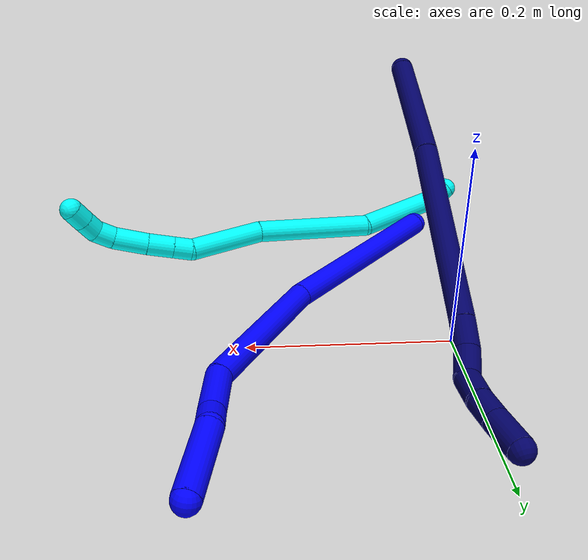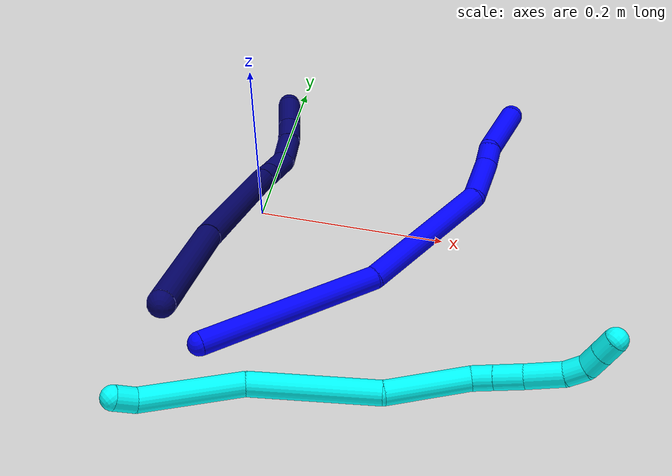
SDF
<sdf version="1.7">
 <world name="default">
  <model name="photoneo_s_sensor">
   <static>1</static>
   <pose>0 0 2 1.57079 1.57079 3.14159</pose>
   <link name="link">
    <inertial><mass>0.1</mass></inertial>
    <sensor name="sensor" type="depth">
     <update_rate>30</update_rate>
     <camera>
      <horizontal_fov>1.22</horizontal_fov>
      <image><width>1920</width><height>1200</height><format>B8G8R8</format></image>
      <clip><near>0.1</near><far>2</far></clip>
      <depth_camera><output>points</output></depth_camera>
     </camera>
     <plugin name="camera_plugin" filename="libgazebo_ros_depth_camera.so">
      <baseline>0.2</baseline>
      <alwaysOn>1</alwaysOn>
      <updateRate>0.0</updateRate>
      <cameraName>camera_ir</cameraName>
      <imageTopicName>/camera/color/image_raw</imageTopicName>
      <cameraInfoTopicName>/camera/color/camera_info</cameraInfoTopicName>
      <depthImageTopicName>/camera/depth/image_raw</depthImageTopicName>
      <depthImageCameraInfoTopicName>/camera/depth/camera_info</depthImageCameraInfoTopicName>
      <pointCloudTopicName>/camera/depth/points</pointCloudTopicName>
      <frameName>fr_optical</frameName>
      <pointCloudCutoff>0.1</pointCloudCutoff>
      <pointCloudCutoffMax>2.0</pointCloudCutoffMax>
      <distortionK1>0</distortionK1>
      <distortionK2>0</distortionK2>
      <distortionK3>0</distortionK3>
      <distortionT1>0</distortionT1>
      <distortionT2>0</distortionT2>
      <CxPrime>0</CxPrime>
      <Cx>0</Cx>
      <Cy>0</Cy>
      <focalLength>0</focalLength>
      <hackBaseline>0</hackBaseline>
     </plugin>
    </sensor>
   </link>
  </model>
  <model name="bin">
   <static>1</static>
   <link name="bottom">
    <collision name="collision-bottom">
     <pose>0 0 -0.01 0 -0 0</pose>
     <geometry><box><size>0.8 0.6 0.02</size></box></geometry>
     <surface>
      <friction><ode><mu>100</mu><mu2>100</mu2></ode></friction>
      <contact><collide_bitmask>65535</collide_bitmask></contact>
     </surface>
    </collision>
   </link>
   <link name="west_wall">
    <collision name="collision-west_wall">
     <pose>-0.41 0 0.1 0 -0 0</pose>
     <geometry><box><size>0.02 0.6 0.2</size></box></geometry>
     <surface>
      <friction><ode><mu>100</mu><mu2>100</mu2></ode></friction>
      <contact><collide_bitmask>65535</collide_bitmask></contact>
     </surface>
    </collision>
   </link>
   <link name="east_wall">
    <collision name="collision-east_wall">
     <pose>0.41 0 0.1 0 -0 0</pose>
     <geometry><box><size>0.02 0.6 0.2</size></box></geometry>
     <surface>
      <friction><ode><mu>100</mu><mu2>100</mu2></ode></friction>
      <contact><collide_bitmask>65535</collide_bitmask></contact>
     </surface>
    </collision>
   </link>
   <link name="south_wall">
    <collision name="collision-south_wall">
     <pose>0 -0.31 0.1 0 -0 0</pose>
     <geometry><box><size>0.8 0.02 0.2</size></box></geometry>
     <surface>
      <friction><ode><mu>100</mu><mu2>100</mu2></ode></friction>
      <contact><collide_bitmask>65535</collide_bitmask></contact>
     </surface>
    </collision>
   </link>
   <link name="north_wall">
    <collision name="collision-north_wall">
     <pose>0 0.31 0.1 0 -0 0</pose>
     <geometry><box><size>0.8 0.02 0.2</size></box></geometry>
     <surface>
      <friction><ode><mu>100</mu><mu2>100</mu2></ode></friction>
      <contact><collide_bitmask>65535</collide_bitmask></contact>
     </surface>
    </collision>
   </link>
  </model>
  <model name="1">
   <static>0</static>
   <link name="1">
    <collision name="collision-cylinder-e_1_1_4">
     <pose>-0.056528 0.072189 -0.035755 -2.03067 -0.611869 0.941497</pose>
     <geometry><cylinder><radius>0.0125</radius><length>0.196825</length></cylinder></geometry>
     <surface>
      <friction><ode><mu>1.16</mu><mu2>1.16</mu2><slip1>0</slip1><slip2>0</slip2></ode></friction>
      <contact><ode><kp>1e+06</kp><kd>1</kd><max_vel>0</max_vel><min_depth>0.001</min_depth></ode></contact>
     </surface>
    </collision>
    <visual name="visual-cylinder-e_1_1_4">
     <pose>-0.056528 0.072189 -0.035755 -2.03067 -0.611869 0.941497</pose>
     <geometry><cylinder><radius>0.0125</radius><length>0.196825</length></cylinder></geometry>
     <material><ambient>0 0 1 1</ambient></material>
    </visual>
    <collision name="collision-cylinder-e_2_4_5">
     <pose>-0.175586 0.187292 -0.094243 -2.05796 -0.910455 1.36558</pose>
     <geometry><cylinder><radius>0.0125</radius><length>0.158346</length></cylinder></geometry>
     <surface>
      <friction><ode><mu>1.16</mu><mu2>1.16</mu2><slip1>0</slip1><slip2>0</slip2></ode></friction>
      <contact><ode><kp>1e+06</kp><kd>1</kd><max_vel>0</max_vel><min_depth>0.001</min_depth></ode></contact>
     </surface>
    </collision>
    <visual name="visual-cylinder-e_2_4_5">
     <pose>-0.175586 0.187292 -0.094243 -2.05796 -0.910455 1.36558</pose>
     <geometry><cylinder><radius>0.0125</radius><length>0.158346</length></cylinder></geometry>
     <material><ambient>0 0 1 1</ambient></material>
    </visual>
    <collision name="collision-cylinder-e_3_5_6">
     <pose>-0.262917 0.233619 -0.123517 -2.66053 -1.28167 2.50615</pose>
     <geometry><cylinder><radius>0.0125</radius><length>0.051752</length></cylinder></geometry>
     <surface>
      <friction><ode><mu>1.16</mu><mu2>1.16</mu2><slip1>0</slip1><slip2>0</slip2></ode></friction>
      <contact><ode><kp>1e+06</kp><kd>1</kd><max_vel>0</max_vel><min_depth>0.001</min_depth></ode></contact>
     </surface>
    </collision>
    <visual name="visual-cylinder-e_3_5_6">
     <pose>-0.262917 0.233619 -0.123517 -2.66053 -1.28167 2.50615</pose>
     <geometry><cylinder><radius>0.0125</radius><length>0.051752</length></cylinder></geometry>
     <material><ambient>0 0 1 1</ambient></material>
    </visual>
    <collision name="collision-cylinder-e_4_6_7">
     <pose>-0.298862 0.238176 -0.130409 -1.86924 -1.46391 1.76544</pose>
     <geometry><cylinder><radius>0.0125</radius><length>0.022414</length></cylinder></geometry>
     <surface>
      <friction><ode><mu>1.16</mu><mu2>1.16</mu2><slip1>0</slip1><slip2>0</slip2></ode></friction>
      <contact><ode><kp>1e+06</kp><kd>1</kd><max_vel>0</max_vel><min_depth>0.001</min_depth></ode></contact>
     </surface>
    </collision>
    <visual name="visual-cylinder-e_4_6_7">
     <pose>-0.298862 0.238176 -0.130409 -1.86924 -1.46391 1.76544</pose>
     <geometry><cylinder><radius>0.0125</radius><length>0.022414</length></cylinder></geometry>
     <material><ambient>0 0 1 1</ambient></material>
    </visual>
    <collision name="collision-cylinder-e_5_7_2">
     <pose>-0.341504 0.247161 -0.14471 -2.62943 -1.10072 2.33495</pose>
     <geometry><cylinder><radius>0.0125</radius><length>0.070663</length></cylinder></geometry>
     <surface>
      <friction><ode><mu>1.16</mu><mu2>1.16</mu2><slip1>0</slip1><slip2>0</slip2></ode></friction>
      <contact><ode><kp>1e+06</kp><kd>1</kd><max_vel>0</max_vel><min_depth>0.001</min_depth></ode></contact>
     </surface>
    </collision>
    <visual name="visual-cylinder-e_5_7_2">
     <pose>-0.341504 0.247161 -0.14471 -2.62943 -1.10072 2.33495</pose>
     <geometry><cylinder><radius>0.0125</radius><length>0.070663</length></cylinder></geometry>
     <material><ambient>0 0 1 1</ambient></material>
    </visual>
    <collision name="collision-sphere-2">
     <pose>-0.373003 0.255004 -0.158661 0 -0 0</pose>
     <geometry><sphere><radius>0.0125</radius></sphere></geometry>
     <surface>
      <friction><ode><mu>1.16</mu><mu2>1.16</mu2><slip1>0</slip1><slip2>0</slip2></ode></friction>
      <contact><ode><kp>1e+06</kp><kd>1</kd><max_vel>0</max_vel><min_depth>0.001</min_depth></ode></contact>
     </surface>
    </collision>
    <visual name="visual-sphere-2">
     <pose>-0.373003 0.255004 -0.158661 0 -0 0</pose>
     <geometry><sphere><radius>0.0125</radius></sphere></geometry>
     <material><ambient>0 0 1 1</ambient></material>
    </visual>
    <collision name="collision-sphere-7">
     <pose>-0.310005 0.239319 -0.13076 0 -0 0</pose>
     <geometry><sphere><radius>0.0125</radius></sphere></geometry>
     <surface>
      <friction><ode><mu>1.16</mu><mu2>1.16</mu2><slip1>0</slip1><slip2>0</slip2></ode></friction>
      <contact><ode><kp>1e+06</kp><kd>1</kd><max_vel>0</max_vel><min_depth>0.001</min_depth></ode></contact>
     </surface>
    </collision>
    <visual name="visual-sphere-7">
     <pose>-0.310005 0.239319 -0.13076 0 -0 0</pose>
     <geometry><sphere><radius>0.0125</radius></sphere></geometry>
     <material><ambient>0 0 1 1</ambient></material>
    </visual>
    <collision name="collision-sphere-6">
     <pose>-0.287719 0.237033 -0.130057 0 -0 0</pose>
     <geometry><sphere><radius>0.0125</radius></sphere></geometry>
     <surface>
      <friction><ode><mu>1.16</mu><mu2>1.16</mu2><slip1>0</slip1><slip2>0</slip2></ode></friction>
      <contact><ode><kp>1e+06</kp><kd>1</kd><max_vel>0</max_vel><min_depth>0.001</min_depth></ode></contact>
     </surface>
    </collision>
    <visual name="visual-sphere-6">
     <pose>-0.287719 0.237033 -0.130057 0 -0 0</pose>
     <geometry><sphere><radius>0.0125</radius></sphere></geometry>
     <material><ambient>0 0 1 1</ambient></material>
    </visual>
    <collision name="collision-sphere-5">
     <pose>-0.238115 0.230206 -0.116977 0 -0 0</pose>
     <geometry><sphere><radius>0.0125</radius></sphere></geometry>
     <surface>
      <friction><ode><mu>1.16</mu><mu2>1.16</mu2><slip1>0</slip1><slip2>0</slip2></ode></friction>
      <contact><ode><kp>1e+06</kp><kd>1</kd><max_vel>0</max_vel><min_depth>0.001</min_depth></ode></contact>
     </surface>
    </collision>
    <visual name="visual-sphere-5">
     <pose>-0.238115 0.230206 -0.116977 0 -0 0</pose>
     <geometry><sphere><radius>0.0125</radius></sphere></geometry>
     <material><ambient>0 0 1 1</ambient></material>
    </visual>
    <collision name="collision-sphere-1">
     <geometry><sphere><radius>0.0125</radius></sphere></geometry>
     <surface>
      <friction><ode><mu>1.16</mu><mu2>1.16</mu2><slip1>0</slip1><slip2>0</slip2></ode></friction>
      <contact><ode><kp>1e+06</kp><kd>1</kd><max_vel>0</max_vel><min_depth>0.001</min_depth></ode></contact>
     </surface>
    </collision>
    <visual name="visual-sphere-1">
     <geometry><sphere><radius>0.0125</radius></sphere></geometry>
     <material><ambient>0 0 1 1</ambient></material>
    </visual>
    <collision name="collision-sphere-4">
     <pose>-0.113056 0.144378 -0.071509 0 -0 0</pose>
     <geometry><sphere><radius>0.0125</radius></sphere></geometry>
     <surface>
      <friction><ode><mu>1.16</mu><mu2>1.16</mu2><slip1>0</slip1><slip2>0</slip2></ode></friction>
      <contact><ode><kp>1e+06</kp><kd>1</kd><max_vel>0</max_vel><min_depth>0.001</min_depth></ode></contact>
     </surface>
    </collision>
    <visual name="visual-sphere-4">
     <pose>-0.113056 0.144378 -0.071509 0 -0 0</pose>
     <geometry><sphere><radius>0.0125</radius></sphere></geometry>
     <material><ambient>0 0 1 1</ambient></material>
    </visual>
    <inertial>
     <pose>-0.166733 0.157519 -0.083003 0 -0 0</pose>
     <mass>0.5</mass>
     <inertia><ixx>0.000951</ixx><ixy>0</ixy><ixz>0</ixz><iyy>0.001003</iyy><iyz>0</iyz><izz>3e-06</izz></inertia>
    </inertial>
   </link>
   <pose>-0.005302 -0.204925 0.026626 0.179667 0.250818 -1.5045</pose>
  </model>
  <model name="3">
   <static>0</static>
   <link name="3">
    <collision name="collision-cylinder-e_1_1_4">
     <pose>0.007555 -0.003496 -0.007807 2.72053 0.723436 2.11333</pose>
     <geometry><cylinder><radius>0.0125</radius><length>0.022826</length></cylinder></geometry>
     <surface>
      <friction><ode><mu>1.16</mu><mu2>1.16</mu2><slip1>0</slip1><slip2>0</slip2></ode></friction>
      <contact><ode><kp>1e+06</kp><kd>1</kd><max_vel>0</max_vel><min_depth>0.001</min_depth></ode></contact>
     </surface>
    </collision>
    <visual name="visual-cylinder-e_1_1_4">
     <pose>0.007555 -0.003496 -0.007807 2.72053 0.723436 2.11333</pose>
     <geometry><cylinder><radius>0.0125</radius><length>0.022826</length></cylinder></geometry>
     <material><ambient>0.003922 1 0.996078 1</ambient></material>
    </visual>
    <collision name="collision-cylinder-e_2_4_5">
     <pose>0.042036 -0.006249 -0.060483 -3.12501 0.540441 -3.08174</pose>
     <geometry><cylinder><radius>0.0125</radius><length>0.104666</length></cylinder></geometry>
     <surface>
      <friction><ode><mu>1.16</mu><mu2>1.16</mu2><slip1>0</slip1><slip2>0</slip2></ode></friction>
      <contact><ode><kp>1e+06</kp><kd>1</kd><max_vel>0</max_vel><min_depth>0.001</min_depth></ode></contact>
     </surface>
    </collision>
    <visual name="visual-cylinder-e_2_4_5">
     <pose>0.042036 -0.006249 -0.060483 -3.12501 0.540441 -3.08174</pose>
     <geometry><cylinder><radius>0.0125</radius><length>0.104666</length></cylinder></geometry>
     <material><ambient>0.003922 1 0.996078 1</ambient></material>
    </visual>
    <collision name="collision-cylinder-e_3_5_6">
     <pose>0.11342 0.014511 -0.150178 -2.72165 0.735901 -2.13159</pose>
     <geometry><cylinder><radius>0.0125</radius><length>0.132462</length></cylinder></geometry>
     <surface>
      <friction><ode><mu>1.16</mu><mu2>1.16</mu2><slip1>0</slip1><slip2>0</slip2></ode></friction>
      <contact><ode><kp>1e+06</kp><kd>1</kd><max_vel>0</max_vel><min_depth>0.001</min_depth></ode></contact>
     </surface>
    </collision>
    <visual name="visual-cylinder-e_3_5_6">
     <pose>0.11342 0.014511 -0.150178 -2.72165 0.735901 -2.13159</pose>
     <geometry><cylinder><radius>0.0125</radius><length>0.132462</length></cylinder></geometry>
     <material><ambient>0.003922 1 0.996078 1</ambient></material>
    </visual>
    <collision name="collision-cylinder-e_4_6_7">
     <pose>0.17999 0.038911 -0.232491 -3.02514 0.529969 -2.7184</pose>
     <geometry><cylinder><radius>0.0125</radius><length>0.087487</length></cylinder></geometry>
     <surface>
      <friction><ode><mu>1.16</mu><mu2>1.16</mu2><slip1>0</slip1><slip2>0</slip2></ode></friction>
      <contact><ode><kp>1e+06</kp><kd>1</kd><max_vel>0</max_vel><min_depth>0.001</min_depth></ode></contact>
     </surface>
    </collision>
    <visual name="visual-cylinder-e_4_6_7">
     <pose>0.17999 0.038911 -0.232491 -3.02514 0.529969 -2.7184</pose>
     <geometry><cylinder><radius>0.0125</radius><length>0.087487</length></cylinder></geometry>
     <material><ambient>0.003922 1 0.996078 1</ambient></material>
    </visual>
    <collision name="collision-cylinder-e_5_7_8">
     <pose>0.208222 0.048408 -0.277355 -2.53555 0.598497 -1.55747</pose>
     <geometry><cylinder><radius>0.0125</radius><length>0.021724</length></cylinder></geometry>
     <surface>
      <friction><ode><mu>1.16</mu><mu2>1.16</mu2><slip1>0</slip1><slip2>0</slip2></ode></friction>
      <contact><ode><kp>1e+06</kp><kd>1</kd><max_vel>0</max_vel><min_depth>0.001</min_depth></ode></contact>
     </surface>
    </collision>
    <visual name="visual-cylinder-e_5_7_8">
     <pose>0.208222 0.048408 -0.277355 -2.53555 0.598497 -1.55747</pose>
     <geometry><cylinder><radius>0.0125</radius><length>0.021724</length></cylinder></geometry>
     <material><ambient>0.003922 1 0.996078 1</ambient></material>
    </visual>
    <collision name="collision-cylinder-e_6_8_9">
     <pose>0.222727 0.060524 -0.294814 -2.5345 0.599154 -1.55681</pose>
     <geometry><cylinder><radius>0.0125</radius><length>0.029735</length></cylinder></geometry>
     <surface>
      <friction><ode><mu>1.16</mu><mu2>1.16</mu2><slip1>0</slip1><slip2>0</slip2></ode></friction>
      <contact><ode><kp>1e+06</kp><kd>1</kd><max_vel>0</max_vel><min_depth>0.001</min_depth></ode></contact>
     </surface>
    </collision>
    <visual name="visual-cylinder-e_6_8_9">
     <pose>0.222727 0.060524 -0.294814 -2.5345 0.599154 -1.55681</pose>
     <geometry><cylinder><radius>0.0125</radius><length>0.029735</length></cylinder></geometry>
     <material><ambient>0.003922 1 0.996078 1</ambient></material>
    </visual>
    <collision name="collision-cylinder-e_7_9_10">
     <pose>0.24145 0.077616 -0.317971 -2.48438 0.559404 -1.40013</pose>
     <geometry><cylinder><radius>0.0125</radius><length>0.038965</length></cylinder></geometry>
     <surface>
      <friction><ode><mu>1.16</mu><mu2>1.16</mu2><slip1>0</slip1><slip2>0</slip2></ode></friction>
      <contact><ode><kp>1e+06</kp><kd>1</kd><max_vel>0</max_vel><min_depth>0.001</min_depth></ode></contact>
     </surface>
    </collision>
    <visual name="visual-cylinder-e_7_9_10">
     <pose>0.24145 0.077616 -0.317971 -2.48438 0.559404 -1.40013</pose>
     <geometry><cylinder><radius>0.0125</radius><length>0.038965</length></cylinder></geometry>
     <material><ambient>0.003922 1 0.996078 1</ambient></material>
    </visual>
    <collision name="collision-cylinder-e_8_10_11">
     <pose>0.254821 0.094619 -0.338993 -2.42562 0.280216 -0.721018</pose>
     <geometry><cylinder><radius>0.0125</radius><length>0.021928</length></cylinder></geometry>
     <surface>
      <friction><ode><mu>1.16</mu><mu2>1.16</mu2><slip1>0</slip1><slip2>0</slip2></ode></friction>
      <contact><ode><kp>1e+06</kp><kd>1</kd><max_vel>0</max_vel><min_depth>0.001</min_depth></ode></contact>
     </surface>
    </collision>
    <visual name="visual-cylinder-e_8_10_11">
     <pose>0.254821 0.094619 -0.338993 -2.42562 0.280216 -0.721018</pose>
     <geometry><cylinder><radius>0.0125</radius><length>0.021928</length></cylinder></geometry>
     <material><ambient>0.003922 1 0.996078 1</ambient></material>
    </visual>
    <collision name="collision-cylinder-e_9_11_12">
     <pose>0.256343 0.108744 -0.353727 -2.32585 -0.151325 0.347343</pose>
     <geometry><cylinder><radius>0.0125</radius><length>0.020028</length></cylinder></geometry>
     <surface>
      <friction><ode><mu>1.16</mu><mu2>1.16</mu2><slip1>0</slip1><slip2>0</slip2></ode></friction>
      <contact><ode><kp>1e+06</kp><kd>1</kd><max_vel>0</max_vel><min_depth>0.001</min_depth></ode></contact>
     </surface>
    </collision>
    <visual name="visual-cylinder-e_9_11_12">
     <pose>0.256343 0.108744 -0.353727 -2.32585 -0.151325 0.347343</pose>
     <geometry><cylinder><radius>0.0125</radius><length>0.020028</length></cylinder></geometry>
     <material><ambient>0.003922 1 0.996078 1</ambient></material>
    </visual>
    <collision name="collision-cylinder-e_10_12_2">
     <pose>0.253173 0.123317 -0.367207 -2.30873 -0.165329 0.370357</pose>
     <geometry><cylinder><radius>0.0125</radius><length>0.02018</length></cylinder></geometry>
     <surface>
      <friction><ode><mu>1.16</mu><mu2>1.16</mu2><slip1>0</slip1><slip2>0</slip2></ode></friction>
      <contact><ode><kp>1e+06</kp><kd>1</kd><max_vel>0</max_vel><min_depth>0.001</min_depth></ode></contact>
     </surface>
    </collision>
    <visual name="visual-cylinder-e_10_12_2">
     <pose>0.253173 0.123317 -0.367207 -2.30873 -0.165329 0.370357</pose>
     <geometry><cylinder><radius>0.0125</radius><length>0.02018</length></cylinder></geometry>
     <material><ambient>0.003922 1 0.996078 1</ambient></material>
    </visual>
    <collision name="collision-sphere-2">
     <pose>0.251513 0.13068 -0.373903 0 -0 0</pose>
     <geometry><sphere><radius>0.0125</radius></sphere></geometry>
     <surface>
      <friction><ode><mu>1.16</mu><mu2>1.16</mu2><slip1>0</slip1><slip2>0</slip2></ode></friction>
      <contact><ode><kp>1e+06</kp><kd>1</kd><max_vel>0</max_vel><min_depth>0.001</min_depth></ode></contact>
     </surface>
    </collision>
    <visual name="visual-sphere-2">
     <pose>0.251513 0.13068 -0.373903 0 -0 0</pose>
     <geometry><sphere><radius>0.0125</radius></sphere></geometry>
     <material><ambient>0.003922 1 0.996078 1</ambient></material>
    </visual>
    <collision name="collision-sphere-12">
     <pose>0.254834 0.115953 -0.360511 0 -0 0</pose>
     <geometry><sphere><radius>0.0125</radius></sphere></geometry>
     <surface>
      <friction><ode><mu>1.16</mu><mu2>1.16</mu2><slip1>0</slip1><slip2>0</slip2></ode></friction>
      <contact><ode><kp>1e+06</kp><kd>1</kd><max_vel>0</max_vel><min_depth>0.001</min_depth></ode></contact>
     </surface>
    </collision>
    <visual name="visual-sphere-12">
     <pose>0.254834 0.115953 -0.360511 0 -0 0</pose>
     <geometry><sphere><radius>0.0125</radius></sphere></geometry>
     <material><ambient>0.003922 1 0.996078 1</ambient></material>
    </visual>
    <collision name="collision-sphere-11">
     <pose>0.257853 0.101535 -0.346942 0 -0 0</pose>
     <geometry><sphere><radius>0.0125</radius></sphere></geometry>
     <surface>
      <friction><ode><mu>1.16</mu><mu2>1.16</mu2><slip1>0</slip1><slip2>0</slip2></ode></friction>
      <contact><ode><kp>1e+06</kp><kd>1</kd><max_vel>0</max_vel><min_depth>0.001</min_depth></ode></contact>
     </surface>
    </collision>
    <visual name="visual-sphere-11">
     <pose>0.257853 0.101535 -0.346942 0 -0 0</pose>
     <geometry><sphere><radius>0.0125</radius></sphere></geometry>
     <material><ambient>0.003922 1 0.996078 1</ambient></material>
    </visual>
    <collision name="collision-sphere-10">
     <pose>0.251789 0.087704 -0.331044 0 -0 0</pose>
     <geometry><sphere><radius>0.0125</radius></sphere></geometry>
     <surface>
      <friction><ode><mu>1.16</mu><mu2>1.16</mu2><slip1>0</slip1><slip2>0</slip2></ode></friction>
      <contact><ode><kp>1e+06</kp><kd>1</kd><max_vel>0</max_vel><min_depth>0.001</min_depth></ode></contact>
     </surface>
    </collision>
    <visual name="visual-sphere-10">
     <pose>0.251789 0.087704 -0.331044 0 -0 0</pose>
     <geometry><sphere><radius>0.0125</radius></sphere></geometry>
     <material><ambient>0.003922 1 0.996078 1</ambient></material>
    </visual>
    <collision name="collision-sphere-9">
     <pose>0.231111 0.067528 -0.304898 0 -0 0</pose>
     <geometry><sphere><radius>0.0125</radius></sphere></geometry>
     <surface>
      <friction><ode><mu>1.16</mu><mu2>1.16</mu2><slip1>0</slip1><slip2>0</slip2></ode></friction>
      <contact><ode><kp>1e+06</kp><kd>1</kd><max_vel>0</max_vel><min_depth>0.001</min_depth></ode></contact>
     </surface>
    </collision>
    <visual name="visual-sphere-9">
     <pose>0.231111 0.067528 -0.304898 0 -0 0</pose>
     <geometry><sphere><radius>0.0125</radius></sphere></geometry>
     <material><ambient>0.003922 1 0.996078 1</ambient></material>
    </visual>
    <collision name="collision-sphere-4">
     <pose>0.01511 -0.006993 -0.015614 0 -0 0</pose>
     <geometry><sphere><radius>0.0125</radius></sphere></geometry>
     <surface>
      <friction><ode><mu>1.16</mu><mu2>1.16</mu2><slip1>0</slip1><slip2>0</slip2></ode></friction>
      <contact><ode><kp>1e+06</kp><kd>1</kd><max_vel>0</max_vel><min_depth>0.001</min_depth></ode></contact>
     </surface>
    </collision>
    <visual name="visual-sphere-4">
     <pose>0.01511 -0.006993 -0.015614 0 -0 0</pose>
     <geometry><sphere><radius>0.0125</radius></sphere></geometry>
     <material><ambient>0.003922 1 0.996078 1</ambient></material>
    </visual>
    <collision name="collision-sphere-1">
     <geometry><sphere><radius>0.0125</radius></sphere></geometry>
     <surface>
      <friction><ode><mu>1.16</mu><mu2>1.16</mu2><slip1>0</slip1><slip2>0</slip2></ode></friction>
      <contact><ode><kp>1e+06</kp><kd>1</kd><max_vel>0</max_vel><min_depth>0.001</min_depth></ode></contact>
     </surface>
    </collision>
    <visual name="visual-sphere-1">
     <geometry><sphere><radius>0.0125</radius></sphere></geometry>
     <material><ambient>0.003922 1 0.996078 1</ambient></material>
    </visual>
    <collision name="collision-sphere-8">
     <pose>0.214342 0.05352 -0.284731 0 -0 0</pose>
     <geometry><sphere><radius>0.0125</radius></sphere></geometry>
     <surface>
      <friction><ode><mu>1.16</mu><mu2>1.16</mu2><slip1>0</slip1><slip2>0</slip2></ode></friction>
      <contact><ode><kp>1e+06</kp><kd>1</kd><max_vel>0</max_vel><min_depth>0.001</min_depth></ode></contact>
     </surface>
    </collision>
    <visual name="visual-sphere-8">
     <pose>0.214342 0.05352 -0.284731 0 -0 0</pose>
     <geometry><sphere><radius>0.0125</radius></sphere></geometry>
     <material><ambient>0.003922 1 0.996078 1</ambient></material>
    </visual>
    <collision name="collision-sphere-5">
     <pose>0.068962 -0.005505 -0.105351 0 -0 0</pose>
     <geometry><sphere><radius>0.0125</radius></sphere></geometry>
     <surface>
      <friction><ode><mu>1.16</mu><mu2>1.16</mu2><slip1>0</slip1><slip2>0</slip2></ode></friction>
      <contact><ode><kp>1e+06</kp><kd>1</kd><max_vel>0</max_vel><min_depth>0.001</min_depth></ode></contact>
     </surface>
    </collision>
    <visual name="visual-sphere-5">
     <pose>0.068962 -0.005505 -0.105351 0 -0 0</pose>
     <geometry><sphere><radius>0.0125</radius></sphere></geometry>
     <material><ambient>0.003922 1 0.996078 1</ambient></material>
    </visual>
    <collision name="collision-sphere-6">
     <pose>0.157877 0.034526 -0.195004 0 -0 0</pose>
     <geometry><sphere><radius>0.0125</radius></sphere></geometry>
     <surface>
      <friction><ode><mu>1.16</mu><mu2>1.16</mu2><slip1>0</slip1><slip2>0</slip2></ode></friction>
      <contact><ode><kp>1e+06</kp><kd>1</kd><max_vel>0</max_vel><min_depth>0.001</min_depth></ode></contact>
     </surface>
    </collision>
    <visual name="visual-sphere-6">
     <pose>0.157877 0.034526 -0.195004 0 -0 0</pose>
     <geometry><sphere><radius>0.0125</radius></sphere></geometry>
     <material><ambient>0.003922 1 0.996078 1</ambient></material>
    </visual>
    <collision name="collision-sphere-7">
     <pose>0.202103 0.043296 -0.269979 0 -0 0</pose>
     <geometry><sphere><radius>0.0125</radius></sphere></geometry>
     <surface>
      <friction><ode><mu>1.16</mu><mu2>1.16</mu2><slip1>0</slip1><slip2>0</slip2></ode></friction>
      <contact><ode><kp>1e+06</kp><kd>1</kd><max_vel>0</max_vel><min_depth>0.001</min_depth></ode></contact>
     </surface>
    </collision>
    <visual name="visual-sphere-7">
     <pose>0.202103 0.043296 -0.269979 0 -0 0</pose>
     <geometry><sphere><radius>0.0125</radius></sphere></geometry>
     <material><ambient>0.003922 1 0.996078 1</ambient></material>
    </visual>
    <inertial>
     <pose>0.143455 0.034419 -0.191702 0 -0 0</pose>
     <mass>0.5</mass>
     <inertia>
      <ixx>-0.000346</ixx>
      <ixy>0</ixy>
      <ixz>0</ixz>
      <iyy>0.00015</iyy>
      <iyz>0</iyz>
      <izz>-0.000327</izz>
     </inertia>
    </inertial>
   </link>
   <pose>-0.062973 -0.287974 0.034409 1.77522 0.547587 -0.529479</pose>
  </model>
  <model name="7">
   <static>0</static>
   <link name="7">
    <collision name="collision-cylinder-e_1_1_4">
     <pose>0.007435 -0.008327 -0.068558 3.02073 0.107249 1.45128</pose>
     <geometry><cylinder><radius>0.0125</radius><length>0.138922</length></cylinder></geometry>
     <surface>
      <friction><ode><mu>1.16</mu><mu2>1.16</mu2><slip1>0</slip1><slip2>0</slip2></ode></friction>
      <contact><ode><kp>1e+06</kp><kd>1</kd><max_vel>0</max_vel><min_depth>0.001</min_depth></ode></contact>
     </surface>
    </collision>
    <visual name="visual-cylinder-e_1_1_4">
     <pose>0.007435 -0.008327 -0.068558 3.02073 0.107249 1.45128</pose>
     <geometry><cylinder><radius>0.0125</radius><length>0.138922</length></cylinder></geometry>
     <material><ambient>0.003922 0 0.403922 1</ambient></material>
    </visual>
    <collision name="collision-cylinder-e_2_4_5">
     <pose>0.017339 -0.034037 -0.237265 2.96974 0.024274 0.279976</pose>
     <geometry><cylinder><radius>0.0125</radius><length>0.203352</length></cylinder></geometry>
     <surface>
      <friction><ode><mu>1.16</mu><mu2>1.16</mu2><slip1>0</slip1><slip2>0</slip2></ode></friction>
      <contact><ode><kp>1e+06</kp><kd>1</kd><max_vel>0</max_vel><min_depth>0.001</min_depth></ode></contact>
     </surface>
    </collision>
    <visual name="visual-cylinder-e_2_4_5">
     <pose>0.017339 -0.034037 -0.237265 2.96974 0.024274 0.279976</pose>
     <geometry><cylinder><radius>0.0125</radius><length>0.203352</length></cylinder></geometry>
     <material><ambient>0.003922 0 0.403922 1</ambient></material>
    </visual>
    <collision name="collision-cylinder-e_3_5_6">
     <pose>0.019805 -0.054741 -0.352543 2.92547 -0.000113 -0.001042</pose>
     <geometry><cylinder><radius>0.0125</radius><length>0.030979</length></cylinder></geometry>
     <surface>
      <friction><ode><mu>1.16</mu><mu2>1.16</mu2><slip1>0</slip1><slip2>0</slip2></ode></friction>
      <contact><ode><kp>1e+06</kp><kd>1</kd><max_vel>0</max_vel><min_depth>0.001</min_depth></ode></contact>
     </surface>
    </collision>
    <visual name="visual-cylinder-e_3_5_6">
     <pose>0.019805 -0.054741 -0.352543 2.92547 -0.000113 -0.001042</pose>
     <geometry><cylinder><radius>0.0125</radius><length>0.030979</length></cylinder></geometry>
     <material><ambient>0.003922 0 0.403922 1</ambient></material>
    </visual>
    <collision name="collision-cylinder-e_4_6_7">
     <pose>0.025259 -0.063092 -0.382379 2.81204 0.337597 1.59538</pose>
     <geometry><cylinder><radius>0.0125</radius><length>0.032946</length></cylinder></geometry>
     <surface>
      <friction><ode><mu>1.16</mu><mu2>1.16</mu2><slip1>0</slip1><slip2>0</slip2></ode></friction>
      <contact><ode><kp>1e+06</kp><kd>1</kd><max_vel>0</max_vel><min_depth>0.001</min_depth></ode></contact>
     </surface>
    </collision>
    <visual name="visual-cylinder-e_4_6_7">
     <pose>0.025259 -0.063092 -0.382379 2.81204 0.337597 1.59538</pose>
     <geometry><cylinder><radius>0.0125</radius><length>0.032946</length></cylinder></geometry>
     <material><ambient>0.003922 0 0.403922 1</ambient></material>
    </visual>
    <collision name="collision-cylinder-e_5_7_8">
     <pose>0.038904 -0.066907 -0.410584 -3.05181 0.543494 -2.82191</pose>
     <geometry><cylinder><radius>0.0125</radius><length>0.031668</length></cylinder></geometry>
     <surface>
      <friction><ode><mu>1.16</mu><mu2>1.16</mu2><slip1>0</slip1><slip2>0</slip2></ode></friction>
      <contact><ode><kp>1e+06</kp><kd>1</kd><max_vel>0</max_vel><min_depth>0.001</min_depth></ode></contact>
     </surface>
    </collision>
    <visual name="visual-cylinder-e_5_7_8">
     <pose>0.038904 -0.066907 -0.410584 -3.05181 0.543494 -2.82191</pose>
     <geometry><cylinder><radius>0.0125</radius><length>0.031668</length></cylinder></geometry>
     <material><ambient>0.003922 0 0.403922 1</ambient></material>
    </visual>
    <collision name="collision-cylinder-e_6_8_9">
     <pose>0.051915 -0.062981 -0.435653 -2.91146 0.385499 -2.07229</pose>
     <geometry><cylinder><radius>0.0125</radius><length>0.025652</length></cylinder></geometry>
     <surface>
      <friction><ode><mu>1.16</mu><mu2>1.16</mu2><slip1>0</slip1><slip2>0</slip2></ode></friction>
      <contact><ode><kp>1e+06</kp><kd>1</kd><max_vel>0</max_vel><min_depth>0.001</min_depth></ode></contact>
     </surface>
    </collision>
    <visual name="visual-cylinder-e_6_8_9">
     <pose>0.051915 -0.062981 -0.435653 -2.91146 0.385499 -2.07229</pose>
     <geometry><cylinder><radius>0.0125</radius><length>0.025652</length></cylinder></geometry>
     <material><ambient>0.003922 0 0.403922 1</ambient></material>
    </visual>
    <collision name="collision-cylinder-e_7_9_2">
     <pose>0.063982 -0.055947 -0.463397 -2.8804 0.4084 -2.01113</pose>
     <geometry><cylinder><radius>0.0125</radius><length>0.03648</length></cylinder></geometry>
     <surface>
      <friction><ode><mu>1.16</mu><mu2>1.16</mu2><slip1>0</slip1><slip2>0</slip2></ode></friction>
      <contact><ode><kp>1e+06</kp><kd>1</kd><max_vel>0</max_vel><min_depth>0.001</min_depth></ode></contact>
     </surface>
    </collision>
    <visual name="visual-cylinder-e_7_9_2">
     <pose>0.063982 -0.055947 -0.463397 -2.8804 0.4084 -2.01113</pose>
     <geometry><cylinder><radius>0.0125</radius><length>0.03648</length></cylinder></geometry>
     <material><ambient>0.003922 0 0.403922 1</ambient></material>
    </visual>
    <collision name="collision-sphere-2">
     <pose>0.071226 -0.051624 -0.479569 0 -0 0</pose>
     <geometry><sphere><radius>0.0125</radius></sphere></geometry>
     <surface>
      <friction><ode><mu>1.16</mu><mu2>1.16</mu2><slip1>0</slip1><slip2>0</slip2></ode></friction>
      <contact><ode><kp>1e+06</kp><kd>1</kd><max_vel>0</max_vel><min_depth>0.001</min_depth></ode></contact>
     </surface>
    </collision>
    <visual name="visual-sphere-2">
     <pose>0.071226 -0.051624 -0.479569 0 -0 0</pose>
     <geometry><sphere><radius>0.0125</radius></sphere></geometry>
     <material><ambient>0.003922 0 0.403922 1</ambient></material>
    </visual>
    <collision name="collision-sphere-9">
     <pose>0.056738 -0.06027 -0.447224 0 -0 0</pose>
     <geometry><sphere><radius>0.0125</radius></sphere></geometry>
     <surface>
      <friction><ode><mu>1.16</mu><mu2>1.16</mu2><slip1>0</slip1><slip2>0</slip2></ode></friction>
      <contact><ode><kp>1e+06</kp><kd>1</kd><max_vel>0</max_vel><min_depth>0.001</min_depth></ode></contact>
     </surface>
    </collision>
    <visual name="visual-sphere-9">
     <pose>0.056738 -0.06027 -0.447224 0 -0 0</pose>
     <geometry><sphere><radius>0.0125</radius></sphere></geometry>
     <material><ambient>0.003922 0 0.403922 1</ambient></material>
    </visual>
    <collision name="collision-sphere-4">
     <pose>0.014871 -0.016654 -0.137116 0 -0 0</pose>
     <geometry><sphere><radius>0.0125</radius></sphere></geometry>
     <surface>
      <friction><ode><mu>1.16</mu><mu2>1.16</mu2><slip1>0</slip1><slip2>0</slip2></ode></friction>
      <contact><ode><kp>1e+06</kp><kd>1</kd><max_vel>0</max_vel><min_depth>0.001</min_depth></ode></contact>
     </surface>
    </collision>
    <visual name="visual-sphere-4">
     <pose>0.014871 -0.016654 -0.137116 0 -0 0</pose>
     <geometry><sphere><radius>0.0125</radius></sphere></geometry>
     <material><ambient>0.003922 0 0.403922 1</ambient></material>
    </visual>
    <collision name="collision-sphere-1">
     <geometry><sphere><radius>0.0125</radius></sphere></geometry>
     <surface>
      <friction><ode><mu>1.16</mu><mu2>1.16</mu2><slip1>0</slip1><slip2>0</slip2></ode></friction>
      <contact><ode><kp>1e+06</kp><kd>1</kd><max_vel>0</max_vel><min_depth>0.001</min_depth></ode></contact>
     </surface>
    </collision>
    <visual name="visual-sphere-1">
     <geometry><sphere><radius>0.0125</radius></sphere></geometry>
     <material><ambient>0.003922 0 0.403922 1</ambient></material>
    </visual>
    <collision name="collision-sphere-8">
     <pose>0.047092 -0.065692 -0.424082 0 -0 0</pose>
     <geometry><sphere><radius>0.0125</radius></sphere></geometry>
     <surface>
      <friction><ode><mu>1.16</mu><mu2>1.16</mu2><slip1>0</slip1><slip2>0</slip2></ode></friction>
      <contact><ode><kp>1e+06</kp><kd>1</kd><max_vel>0</max_vel><min_depth>0.001</min_depth></ode></contact>
     </surface>
    </collision>
    <visual name="visual-sphere-8">
     <pose>0.047092 -0.065692 -0.424082 0 -0 0</pose>
     <geometry><sphere><radius>0.0125</radius></sphere></geometry>
     <material><ambient>0.003922 0 0.403922 1</ambient></material>
    </visual>
    <collision name="collision-sphere-5">
     <pose>0.019806 -0.051419 -0.337414 0 -0 0</pose>
     <geometry><sphere><radius>0.0125</radius></sphere></geometry>
     <surface>
      <friction><ode><mu>1.16</mu><mu2>1.16</mu2><slip1>0</slip1><slip2>0</slip2></ode></friction>
      <contact><ode><kp>1e+06</kp><kd>1</kd><max_vel>0</max_vel><min_depth>0.001</min_depth></ode></contact>
     </surface>
    </collision>
    <visual name="visual-sphere-5">
     <pose>0.019806 -0.051419 -0.337414 0 -0 0</pose>
     <geometry><sphere><radius>0.0125</radius></sphere></geometry>
     <material><ambient>0.003922 0 0.403922 1</ambient></material>
    </visual>
    <collision name="collision-sphere-6">
     <pose>0.019803 -0.058062 -0.367672 0 -0 0</pose>
     <geometry><sphere><radius>0.0125</radius></sphere></geometry>
     <surface>
      <friction><ode><mu>1.16</mu><mu2>1.16</mu2><slip1>0</slip1><slip2>0</slip2></ode></friction>
      <contact><ode><kp>1e+06</kp><kd>1</kd><max_vel>0</max_vel><min_depth>0.001</min_depth></ode></contact>
     </surface>
    </collision>
    <visual name="visual-sphere-6">
     <pose>0.019803 -0.058062 -0.367672 0 -0 0</pose>
     <geometry><sphere><radius>0.0125</radius></sphere></geometry>
     <material><ambient>0.003922 0 0.403922 1</ambient></material>
    </visual>
    <collision name="collision-sphere-7">
     <pose>0.030715 -0.068122 -0.397086 0 -0 0</pose>
     <geometry><sphere><radius>0.0125</radius></sphere></geometry>
     <surface>
      <friction><ode><mu>1.16</mu><mu2>1.16</mu2><slip1>0</slip1><slip2>0</slip2></ode></friction>
      <contact><ode><kp>1e+06</kp><kd>1</kd><max_vel>0</max_vel><min_depth>0.001</min_depth></ode></contact>
     </surface>
    </collision>
    <visual name="visual-sphere-7">
     <pose>0.030715 -0.068122 -0.397086 0 -0 0</pose>
     <geometry><sphere><radius>0.0125</radius></sphere></geometry>
     <material><ambient>0.003922 0 0.403922 1</ambient></material>
    </visual>
    <inertial>
     <pose>0.021805 -0.035256 -0.244749 0 -0 0</pose>
     <mass>0.5</mass>
     <inertia>
      <ixx>0.001129</ixx>
      <ixy>0</ixy>
      <ixz>0</ixz>
      <iyy>-0.000276</iyy>
      <iyz>0</iyz>
      <izz>6.3e-05</izz>
     </inertia>
    </inertial>
   </link>
   <pose>0.004821 -0.288501 0.191758 0.699918 -0.939764 0.970351</pose>
  </model>
 </world>
</sdf>
